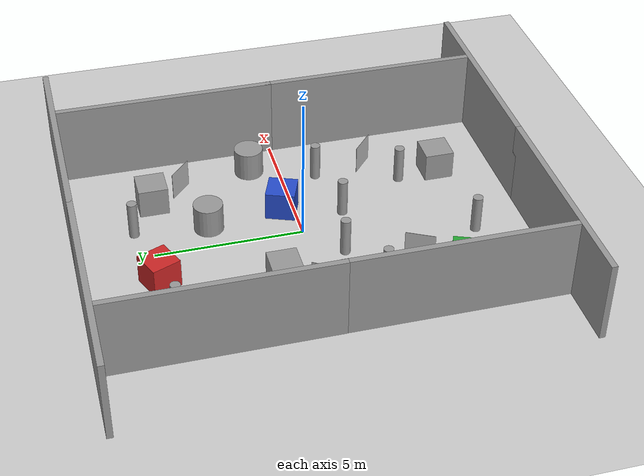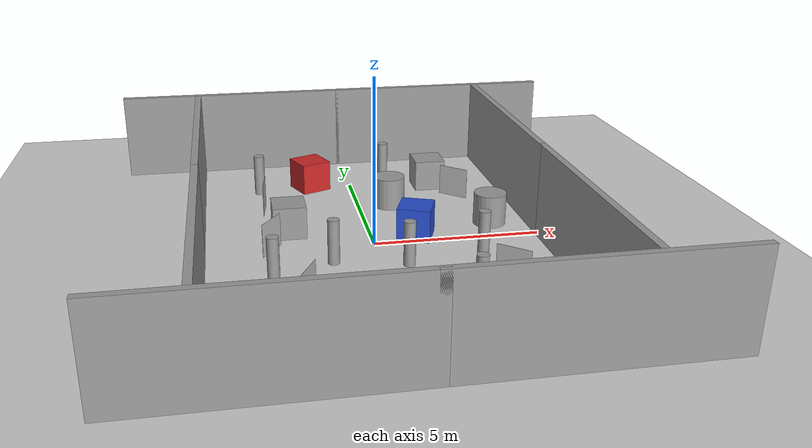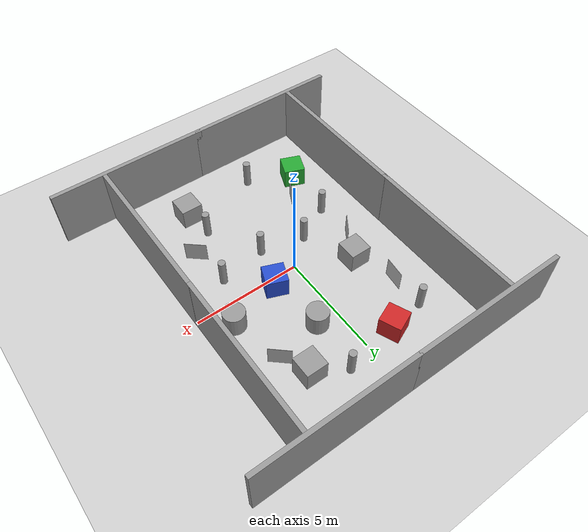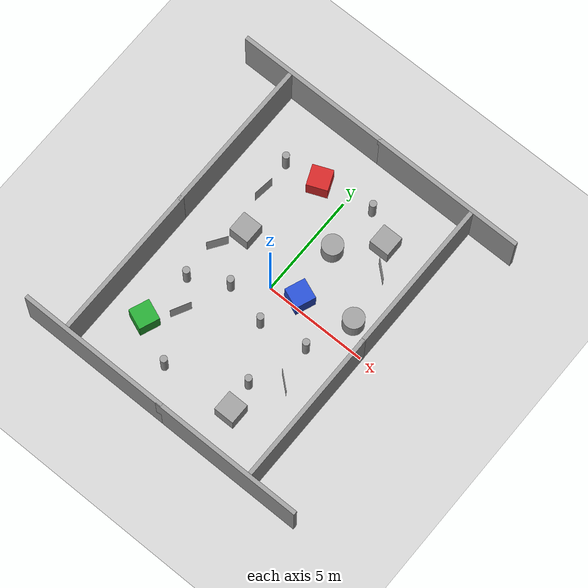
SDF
<sdf version="1.7">
 <world name="default">
  <light name="sun" type="directional">
   <pose>0 0 10 0 -0 0</pose>
   <diffuse>0.8 0.8 0.8 1</diffuse>
   <specular>0.2 0.2 0.2 1</specular>
   <attenuation>
    <range>1000</range>
    <constant>0.9</constant>
    <linear>0.01</linear>
    <quadratic>0.001</quadratic>
   </attenuation>
   <direction>-0.5 0.1 -0.9</direction>
   <spot><inner_angle>0</inner_angle><outer_angle>0</outer_angle><falloff>0</falloff></spot>
  </light>
  <model name="ground_plane">
   <static>1</static>
   <link name="link">
    <collision name="collision">
     <geometry><plane><normal>0 0 1</normal><size>100 100</size></plane></geometry>
     <surface>
      <contact><collide_bitmask>65535</collide_bitmask></contact>
      <friction><ode><mu>100</mu><mu2>50</mu2></ode></friction>
     </surface>
    </collision>
    <visual name="visual">
     <cast_shadows>0</cast_shadows>
     <geometry><plane><normal>0 0 1</normal><size>100 100</size></plane></geometry>
     <material>
      <script><uri>file://media/materials/scripts/gazebo.material</uri><name>Gazebo/Grey</name></script>
     </material>
    </visual>
   </link>
  </model>
  <gravity>0 0 -9.8</gravity>
  <magnetic_field>6e-06 2.3e-05 -4.2e-05</magnetic_field>
  <atmosphere type="adiabatic"/>
  <physics type="ode">
   <max_step_size>0.001</max_step_size>
   <real_time_factor>1</real_time_factor>
   <real_time_update_rate>1000</real_time_update_rate>
  </physics>
  <scene><ambient>0.4 0.4 0.4 1</ambient><background>0.7 0.7 0.7 1</background><shadows>1</shadows></scene>
  <spherical_coordinates>
   <surface_model>EARTH_WGS84</surface_model>
   <latitude_deg>0</latitude_deg>
   <longitude_deg>0</longitude_deg>
   <elevation>0</elevation>
   <heading_deg>0</heading_deg>
  </spherical_coordinates>
  <model name="grey_wall">
   <static>1</static>
   <link name="link">
    <pose>0 0 1.4 0 -0 0</pose>
    <collision name="collision"><geometry><box><size>7.5 0.2 2.8</size></box></geometry></collision>
    <visual name="visual">
     <cast_shadows>0</cast_shadows>
     <geometry><box><size>7.5 0.2 2.8</size></box></geometry>
     <material>
      <script>
       <uri>model://grey_wall/materials/scripts</uri>
       <uri>model://grey_wall/materials/textures</uri>
       <name>vrc/grey_wall</name>
      </script>
     </material>
    </visual>
   </link>
   <pose>3.76571 -7.5 0 0 -0 0</pose>
  </model>
  <model name="grey_wall_0_clone">
   <static>1</static>
   <link name="link">
    <pose>0 0 1.4 0 -0 0</pose>
    <collision name="collision"><geometry><box><size>7.5 0.2 2.8</size></box></geometry></collision>
    <visual name="visual">
     <cast_shadows>0</cast_shadows>
     <geometry><box><size>7.5 0.2 2.8</size></box></geometry>
     <material>
      <script>
       <uri>model://grey_wall/materials/scripts</uri>
       <uri>model://grey_wall/materials/textures</uri>
       <name>vrc/grey_wall</name>
      </script>
     </material>
    </visual>
   </link>
   <pose>-5 -3.65 0 0 0 -1.57174</pose>
  </model>
  <model name="grey_wall_0_clone_clone">
   <static>1</static>
   <link name="link">
    <pose>0 0 1.4 0 -0 0</pose>
    <collision name="collision"><geometry><box><size>7.5 0.2 2.8</size></box></geometry></collision>
    <visual name="visual">
     <cast_shadows>0</cast_shadows>
     <geometry><box><size>7.5 0.2 2.8</size></box></geometry>
     <material>
      <script>
       <uri>model://grey_wall/materials/scripts</uri>
       <uri>model://grey_wall/materials/textures</uri>
       <name>vrc/grey_wall</name>
      </script>
     </material>
    </visual>
   </link>
   <pose>-5 3.65 0 0 0 -1.57174</pose>
  </model>
  <model name="grey_wall_0_clone_0">
   <static>1</static>
   <link name="link">
    <pose>0 0 1.4 0 -0 0</pose>
    <collision name="collision"><geometry><box><size>7.5 0.2 2.8</size></box></geometry></collision>
    <visual name="visual">
     <cast_shadows>0</cast_shadows>
     <geometry><box><size>7.5 0.2 2.8</size></box></geometry>
     <material>
      <script>
       <uri>model://grey_wall/materials/scripts</uri>
       <uri>model://grey_wall/materials/textures</uri>
       <name>vrc/grey_wall</name>
      </script>
     </material>
    </visual>
   </link>
   <pose>-3.7977 7.5 0 0 -0 0</pose>
  </model>
  <model name="grey_wall_0_clone_1">
   <static>1</static>
   <link name="link">
    <pose>0 0 1.4 0 -0 0</pose>
    <collision name="collision"><geometry><box><size>7.5 0.2 2.8</size></box></geometry></collision>
    <visual name="visual">
     <cast_shadows>0</cast_shadows>
     <geometry><box><size>7.5 0.2 2.8</size></box></geometry>
     <material>
      <script>
       <uri>model://grey_wall/materials/scripts</uri>
       <uri>model://grey_wall/materials/textures</uri>
       <name>vrc/grey_wall</name>
      </script>
     </material>
    </visual>
   </link>
   <pose>3.61881 7.5 0 0 -0 0</pose>
  </model>
  <model name="grey_wall_0_clone_clone_clone">
   <static>1</static>
   <link name="link">
    <pose>0 0 1.4 0 -0 0</pose>
    <collision name="collision"><geometry><box><size>7.5 0.2 2.8</size></box></geometry></collision>
    <visual name="visual">
     <cast_shadows>0</cast_shadows>
     <geometry><box><size>7.5 0.2 2.8</size></box></geometry>
     <material>
      <script>
       <uri>model://grey_wall/materials/scripts</uri>
       <uri>model://grey_wall/materials/textures</uri>
       <name>vrc/grey_wall</name>
      </script>
     </material>
    </visual>
   </link>
   <pose>5 3.65 0 0 0 -1.57174</pose>
  </model>
  <model name="grey_wall_0_clone_clone_clone_0">
   <static>1</static>
   <link name="link">
    <pose>0 0 1.4 0 -0 0</pose>
    <collision name="collision"><geometry><box><size>7.5 0.2 2.8</size></box></geometry></collision>
    <visual name="visual">
     <cast_shadows>0</cast_shadows>
     <geometry><box><size>7.5 0.2 2.8</size></box></geometry>
     <material>
      <script>
       <uri>model://grey_wall/materials/scripts</uri>
       <uri>model://grey_wall/materials/textures</uri>
       <name>vrc/grey_wall</name>
      </script>
     </material>
    </visual>
   </link>
   <pose>5 -3.65 0 0 0 -1.57174</pose>
  </model>
  <model name="Red_Box">
   <link name="link">
    <inertial>
     <mass>1</mass>
     <inertia>
      <ixx>0.166667</ixx>
      <ixy>0</ixy>
      <ixz>0</ixz>
      <iyy>0.166667</iyy>
      <iyz>0</iyz>
      <izz>0.166667</izz>
     </inertia>
    </inertial>
    <pose>0 0 0 0 -0 0.393269</pose>
    <visual name="visual">
     <geometry><box><size>1 1 1</size></box></geometry>
     <material>
      <script><name>Gazebo/Red</name><uri>file://media/materials/scripts/gazebo.material</uri></script>
      <shader type="pixel"><normal_map>__default__</normal_map></shader>
      <ambient>1 0 0 1</ambient>
      <diffuse>1 0 0 1</diffuse>
      <specular>0.1 0.1 0.1 1</specular>
      <emissive>0 0 0 1</emissive>
     </material>
    </visual>
    <collision name="collision">
     <geometry><box><size>1 1 1</size></box></geometry>
     <surface>
      <friction>
       <ode><mu>1</mu><mu2>1</mu2><fdir1>0 0 0</fdir1><slip1>0</slip1><slip2>0</slip2></ode>
       <torsional>
        <coefficient>1</coefficient>
        <patch_radius>0</patch_radius>
        <surface_radius>0</surface_radius>
        <use_patch_radius>1</use_patch_radius>
        <ode><slip>0</slip></ode>
       </torsional>
      </friction>
      <bounce><restitution_coefficient>0</restitution_coefficient><threshold>1e+06</threshold></bounce>
      <contact>
       <collide_without_contact>0</collide_without_contact>
       <collide_without_contact_bitmask>1</collide_without_contact_bitmask>
       <collide_bitmask>1</collide_bitmask>
       <ode>
        <soft_cfm>0</soft_cfm>
        <soft_erp>0.2</soft_erp>
        <kp>1e+13</kp>
        <kd>1</kd>
        <max_vel>0.01</max_vel>
        <min_depth>0</min_depth>
       </ode>
       <bullet>
        <split_impulse>1</split_impulse>
        <split_impulse_penetration_threshold>-0.01</split_impulse_penetration_threshold>
        <soft_cfm>0</soft_cfm>
        <soft_erp>0.2</soft_erp>
        <kp>1e+13</kp>
        <kd>1</kd>
       </bullet>
      </contact>
     </surface>
    </collision>
   </link>
   <static>0</static>
   <pose>-1.35859 5.03765 0.499995 9e-06 4e-06 -3.2e-05</pose>
  </model>
  <model name="Apriltag36_11_00000">
   <link name="main">
    <visual name="main_Visual">
     <geometry><box><size>1 1 0.01</size></box></geometry>
     <material>
      <script>
       <uri>model://Apriltag36_11_00000/materials/scripts</uri>
       <uri>model://Apriltag36_11_00000/materials/textures</uri>
       <name>Apriltag36_11_00000</name>
      </script>
      <shader type="pixel"/>
     </material>
    </visual>
   </link>
   <static>1</static>
   <pose>-2.27346 -3.31731 0.504988 0.481937 1.56881 -0.000254</pose>
  </model>
  <model name="Apriltag36_11_00001">
   <link name="main">
    <visual name="main_Visual">
     <geometry><box><size>1 1 0.01</size></box></geometry>
     <material>
      <script>
       <uri>model://Apriltag36_11_00001/materials/scripts</uri>
       <uri>model://Apriltag36_11_00001/materials/textures</uri>
       <name>Apriltag36_11_00001</name>
      </script>
      <shader type="pixel"/>
     </material>
    </visual>
   </link>
   <static>1</static>
   <pose>3.23114 -2.99645 0.480634 -0.0002 -1.56711 0.855025</pose>
  </model>
  <model name="Apriltag36_11_00003">
   <link name="main">
    <visual name="main_Visual">
     <geometry><box><size>1 1 0.01</size></box></geometry>
     <material>
      <script>
       <uri>model://Apriltag36_11_00003/materials/scripts</uri>
       <uri>model://Apriltag36_11_00003/materials/textures</uri>
       <name>Apriltag36_11_00003</name>
      </script>
      <shader type="pixel"/>
     </material>
    </visual>
   </link>
   <static>1</static>
   <pose>-3.024 3.17695 0.494585 -3.01408 1.56828 3.14116</pose>
  </model>
  <model name="Apriltag36_11_00004">
   <link name="main">
    <visual name="main_Visual">
     <geometry><box><size>1 1 0.01</size></box></geometry>
     <material>
      <script>
       <uri>model://Apriltag36_11_00004/materials/scripts</uri>
       <uri>model://Apriltag36_11_00004/materials/textures</uri>
       <name>Apriltag36_11_00004</name>
      </script>
      <shader type="pixel"/>
     </material>
    </visual>
   </link>
   <static>1</static>
   <pose>3.29403 3.53326 0.466723 -0.000171 -1.56884 0.837922</pose>
  </model>
  <model name="Apriltag36_11_00005">
   <link name="main">
    <visual name="main_Visual">
     <geometry><box><size>1 1 0.01</size></box></geometry>
     <material>
      <script>
       <uri>model://Apriltag36_11_00005/materials/scripts</uri>
       <uri>model://Apriltag36_11_00005/materials/textures</uri>
       <name>Apriltag36_11_00005</name>
      </script>
      <shader type="pixel"/>
     </material>
    </visual>
   </link>
   <static>1</static>
   <pose>-2.99735 0.005875 0.497451 1.56444 0.003842 0.974229</pose>
  </model>
  <model name="Green_Box">
   <link name="link">
    <inertial>
     <mass>1</mass>
     <inertia>
      <ixx>0.166667</ixx>
      <ixy>0</ixy>
      <ixz>0</ixz>
      <iyy>0.166667</iyy>
      <iyz>0</iyz>
      <izz>0.166667</izz>
     </inertia>
    </inertial>
    <visual name="visual">
     <geometry><box><size>1 1 1</size></box></geometry>
     <material>
      <script><name>Gazebo/Green</name><uri>file://media/materials/scripts/gazebo.material</uri></script>
      <shader type="pixel"><normal_map>__default__</normal_map></shader>
      <ambient>0 1 0 1</ambient>
      <diffuse>0 1 0 1</diffuse>
      <specular>0.1 0.1 0.1 1</specular>
      <emissive>0 0 0 1</emissive>
     </material>
    </visual>
    <collision name="collision">
     <geometry><box><size>1 1 1</size></box></geometry>
     <surface>
      <friction>
       <ode><mu>1</mu><mu2>1</mu2><fdir1>0 0 0</fdir1><slip1>0</slip1><slip2>0</slip2></ode>
       <torsional>
        <coefficient>1</coefficient>
        <patch_radius>0</patch_radius>
        <surface_radius>0</surface_radius>
        <use_patch_radius>1</use_patch_radius>
        <ode><slip>0</slip></ode>
       </torsional>
      </friction>
      <bounce><restitution_coefficient>0</restitution_coefficient><threshold>1e+06</threshold></bounce>
      <contact>
       <collide_without_contact>0</collide_without_contact>
       <collide_without_contact_bitmask>1</collide_without_contact_bitmask>
       <collide_bitmask>1</collide_bitmask>
       <ode>
        <soft_cfm>0</soft_cfm>
        <soft_erp>0.2</soft_erp>
        <kp>1e+13</kp>
        <kd>1</kd>
        <max_vel>0.01</max_vel>
        <min_depth>0</min_depth>
       </ode>
       <bullet>
        <split_impulse>1</split_impulse>
        <split_impulse_penetration_threshold>-0.01</split_impulse_penetration_threshold>
        <soft_cfm>0</soft_cfm>
        <soft_erp>0.2</soft_erp>
        <kp>1e+13</kp>
        <kd>1</kd>
       </bullet>
      </contact>
     </surface>
    </collision>
   </link>
   <static>0</static>
   <pose>-3.25244 -4.57911 0.499995 -1e-05 -0 -0.379876</pose>
  </model>
  <model name="Blue_Box">
   <link name="link">
    <inertial>
     <mass>1</mass>
     <inertia>
      <ixx>0.166667</ixx>
      <ixy>0</ixy>
      <ixz>0</ixz>
      <iyy>0.166667</iyy>
      <iyz>0</iyz>
      <izz>0.166667</izz>
     </inertia>
    </inertial>
    <visual name="visual">
     <geometry><box><size>1 1 1</size></box></geometry>
     <material>
      <script><name>Gazebo/Blue</name><uri>file://media/materials/scripts/gazebo.material</uri></script>
      <shader type="pixel"><normal_map>__default__</normal_map></shader>
      <ambient>0 0 1 1</ambient>
      <diffuse>0 0 1 1</diffuse>
      <specular>0.1 0.1 0.1 1</specular>
      <emissive>0 0 0 1</emissive>
     </material>
    </visual>
    <collision name="collision">
     <geometry><box><size>1 1 1</size></box></geometry>
     <surface>
      <friction>
       <ode><mu>1</mu><mu2>1</mu2><fdir1>0 0 0</fdir1><slip1>0</slip1><slip2>0</slip2></ode>
       <torsional>
        <coefficient>1</coefficient>
        <patch_radius>0</patch_radius>
        <surface_radius>0</surface_radius>
        <use_patch_radius>1</use_patch_radius>
        <ode><slip>0</slip></ode>
       </torsional>
      </friction>
      <bounce><restitution_coefficient>0</restitution_coefficient><threshold>1e+06</threshold></bounce>
      <contact>
       <collide_without_contact>0</collide_without_contact>
       <collide_without_contact_bitmask>1</collide_without_contact_bitmask>
       <collide_bitmask>1</collide_bitmask>
       <ode>
        <soft_cfm>0</soft_cfm>
        <soft_erp>0.2</soft_erp>
        <kp>1e+13</kp>
        <kd>1</kd>
        <max_vel>0.01</max_vel>
        <min_depth>0</min_depth>
       </ode>
       <bullet>
        <split_impulse>1</split_impulse>
        <split_impulse_penetration_threshold>-0.01</split_impulse_penetration_threshold>
        <soft_cfm>0</soft_cfm>
        <soft_erp>0.2</soft_erp>
        <kp>1e+13</kp>
        <kd>1</kd>
       </bullet>
      </contact>
     </surface>
    </collision>
   </link>
   <static>0</static>
   <pose>1.32075 0.40303 0.499995 -1e-05 -0 -0.373955</pose>
  </model>
  <model name="unit_box">
   <pose>2.2507 -5.37134 0.499995 0 1e-05 5e-06</pose>
   <link name="link">
    <inertial>
     <mass>1</mass>
     <inertia>
      <ixx>0.166667</ixx>
      <ixy>0</ixy>
      <ixz>0</ixz>
      <iyy>0.166667</iyy>
      <iyz>0</iyz>
      <izz>0.166667</izz>
     </inertia>
    </inertial>
    <collision name="collision"><geometry><box><size>1 1 1</size></box></geometry></collision>
    <visual name="visual">
     <geometry><box><size>1 1 1</size></box></geometry>
     <material>
      <script><name>Gazebo/Grey</name><uri>file://media/materials/scripts/gazebo.material</uri></script>
     </material>
    </visual>
   </link>
  </model>
  <model name="unit_box_0">
   <pose>-2.40325 1.21654 0.499995 0 -1e-05 -5e-06</pose>
   <link name="link">
    <inertial>
     <mass>1</mass>
     <inertia>
      <ixx>0.166667</ixx>
      <ixy>0</ixy>
      <ixz>0</ixz>
      <iyy>0.166667</iyy>
      <iyz>0</iyz>
      <izz>0.166667</izz>
     </inertia>
    </inertial>
    <collision name="collision"><geometry><box><size>1 1 1</size></box></geometry></collision>
    <visual name="visual">
     <geometry><box><size>1 1 1</size></box></geometry>
     <material>
      <script><name>Gazebo/Grey</name><uri>file://media/materials/scripts/gazebo.material</uri></script>
     </material>
    </visual>
   </link>
  </model>
  <model name="unit_box_1">
   <pose>2.64583 4.63507 0.499995 -1e-05 -0 -0</pose>
   <link name="link">
    <inertial>
     <mass>1</mass>
     <inertia>
      <ixx>0.166667</ixx>
      <ixy>0</ixy>
      <ixz>0</ixz>
      <iyy>0.166667</iyy>
      <iyz>0</iyz>
      <izz>0.166667</izz>
     </inertia>
    </inertial>
    <collision name="collision"><geometry><box><size>1 1 1</size></box></geometry></collision>
    <visual name="visual">
     <geometry><box><size>1 1 1</size></box></geometry>
     <material>
      <script><name>Gazebo/Grey</name><uri>file://media/materials/scripts/gazebo.material</uri></script>
     </material>
    </visual>
   </link>
  </model>
  <model name="grey_wall_clone">
   <static>1</static>
   <link name="link">
    <pose>0 0 1.4 0 -0 0</pose>
    <collision name="collision"><geometry><box><size>7.5 0.2 2.8</size></box></geometry></collision>
    <visual name="visual">
     <cast_shadows>0</cast_shadows>
     <geometry><box><size>7.5 0.2 2.8</size></box></geometry>
     <material>
      <script>
       <uri>model://grey_wall/materials/scripts</uri>
       <uri>model://grey_wall/materials/textures</uri>
       <name>vrc/grey_wall</name>
      </script>
     </material>
    </visual>
   </link>
   <pose>-3.46162 -7.5 0 0 -0 0</pose>
  </model>
  <model name="unit_cylinder">
   <pose>-1.25741 -5.62705 0.659778 0 0 -2.3e-05</pose>
   <link name="link">
    <inertial>
     <mass>1</mass>
     <inertia><ixx>0.145833</ixx><ixy>0</ixy><ixz>0</ixz><iyy>0.145833</iyy><iyz>0</iyz><izz>0.125</izz></inertia>
    </inertial>
    <collision name="collision">
     <geometry><cylinder><radius>0.168502</radius><length>1.31956</length></cylinder></geometry>
    </collision>
    <visual name="visual">
     <geometry><cylinder><radius>0.168502</radius><length>1.31956</length></cylinder></geometry>
     <material>
      <script><name>Gazebo/Grey</name><uri>file://media/materials/scripts/gazebo.material</uri></script>
     </material>
    </visual>
   </link>
  </model>
  <model name="unit_cylinder_clone">
   <pose>0.71502 -1.55828 0.659772 -0 -0 -2.4e-05</pose>
   <link name="link">
    <inertial>
     <mass>1</mass>
     <inertia><ixx>0.145833</ixx><ixy>0</ixy><ixz>0</ixz><iyy>0.145833</iyy><iyz>0</iyz><izz>0.125</izz></inertia>
    </inertial>
    <collision name="collision">
     <geometry><cylinder><radius>0.168502</radius><length>1.31956</length></cylinder></geometry>
    </collision>
    <visual name="visual">
     <geometry><cylinder><radius>0.168502</radius><length>1.31956</length></cylinder></geometry>
     <material>
      <script><name>Gazebo/Grey</name><uri>file://media/materials/scripts/gazebo.material</uri></script>
     </material>
    </visual>
   </link>
  </model>
  <model name="unit_cylinder_clone_0">
   <pose>-3.06948 -1.9827 0.659778 0 0 -2.3e-05</pose>
   <link name="link">
    <inertial>
     <mass>1</mass>
     <inertia><ixx>0.145833</ixx><ixy>0</ixy><ixz>0</ixz><iyy>0.145833</iyy><iyz>0</iyz><izz>0.125</izz></inertia>
    </inertial>
    <collision name="collision">
     <geometry><cylinder><radius>0.168502</radius><length>1.31956</length></cylinder></geometry>
    </collision>
    <visual name="visual">
     <geometry><cylinder><radius>0.168502</radius><length>1.31956</length></cylinder></geometry>
     <material>
      <script><name>Gazebo/Grey</name><uri>file://media/materials/scripts/gazebo.material</uri></script>
     </material>
    </visual>
   </link>
  </model>
  <model name="unit_cylinder_0">
   <pose>3.7939 1.00686 0.499992 -3e-06 4e-06 0</pose>
   <link name="link">
    <inertial>
     <mass>1</mass>
     <inertia><ixx>0.145833</ixx><ixy>0</ixy><ixz>0</ixz><iyy>0.145833</iyy><iyz>0</iyz><izz>0.125</izz></inertia>
    </inertial>
    <collision name="collision">
     <geometry><cylinder><radius>0.5</radius><length>1</length></cylinder></geometry>
    </collision>
    <visual name="visual">
     <geometry><cylinder><radius>0.5</radius><length>1</length></cylinder></geometry>
     <material>
      <script><name>Gazebo/Grey</name><uri>file://media/materials/scripts/gazebo.material</uri></script>
     </material>
    </visual>
   </link>
  </model>
  <model name="unit_cylinder_1">
   <pose>1.00534 2.99759 0.499998 4e-06 -4e-06 0</pose>
   <link name="link">
    <inertial>
     <mass>1</mass>
     <inertia><ixx>0.145833</ixx><ixy>0</ixy><ixz>0</ixz><iyy>0.145833</iyy><iyz>0</iyz><izz>0.125</izz></inertia>
    </inertial>
    <collision name="collision">
     <geometry><cylinder><radius>0.5</radius><length>1</length></cylinder></geometry>
    </collision>
    <visual name="visual">
     <geometry><cylinder><radius>0.5</radius><length>1</length></cylinder></geometry>
     <material>
      <script><name>Gazebo/Grey</name><uri>file://media/materials/scripts/gazebo.material</uri></script>
     </material>
    </visual>
   </link>
  </model>
  <model name="unit_cylinder_clone_clone">
   <pose>-3.08538 4.79688 0.659778 0 0 -2.2e-05</pose>
   <link name="link">
    <inertial>
     <mass>1</mass>
     <inertia><ixx>0.145833</ixx><ixy>0</ixy><ixz>0</ixz><iyy>0.145833</iyy><iyz>0</iyz><izz>0.125</izz></inertia>
    </inertial>
    <collision name="collision">
     <geometry><cylinder><radius>0.168502</radius><length>1.31956</length></cylinder></geometry>
    </collision>
    <visual name="visual">
     <geometry><cylinder><radius>0.168502</radius><length>1.31956</length></cylinder></geometry>
     <material>
      <script><name>Gazebo/Grey</name><uri>file://media/materials/scripts/gazebo.material</uri></script>
     </material>
    </visual>
   </link>
  </model>
  <model name="unit_cylinder_clone_clone_0">
   <pose>1.23867 5.47825 0.659772 -0 -0 -2.2e-05</pose>
   <link name="link">
    <inertial>
     <mass>1</mass>
     <inertia><ixx>0.145833</ixx><ixy>0</ixy><ixz>0</ixz><iyy>0.145833</iyy><iyz>0</iyz><izz>0.125</izz></inertia>
    </inertial>
    <collision name="collision">
     <geometry><cylinder><radius>0.168502</radius><length>1.31956</length></cylinder></geometry>
    </collision>
    <visual name="visual">
     <geometry><cylinder><radius>0.168502</radius><length>1.31956</length></cylinder></geometry>
     <material>
      <script><name>Gazebo/Grey</name><uri>file://media/materials/scripts/gazebo.material</uri></script>
     </material>
    </visual>
   </link>
  </model>
  <model name="unit_cylinder_clone_clone_1">
   <pose>2.06334 -3.97981 0.659778 0 0 -2e-05</pose>
   <link name="link">
    <inertial>
     <mass>1</mass>
     <inertia><ixx>0.145833</ixx><ixy>0</ixy><ixz>0</ixz><iyy>0.145833</iyy><iyz>0</iyz><izz>0.125</izz></inertia>
    </inertial>
    <collision name="collision">
     <geometry><cylinder><radius>0.168502</radius><length>1.31956</length></cylinder></geometry>
    </collision>
    <visual name="visual">
     <geometry><cylinder><radius>0.168502</radius><length>1.31956</length></cylinder></geometry>
     <material>
      <script><name>Gazebo/Grey</name><uri>file://media/materials/scripts/gazebo.material</uri></script>
     </material>
    </visual>
   </link>
  </model>
  <model name="unit_cylinder_clone_clone_2">
   <pose>-1.34136 -1.07959 0.659772 0 -0 -2.4e-05</pose>
   <link name="link">
    <inertial>
     <mass>1</mass>
     <inertia><ixx>0.145833</ixx><ixy>0</ixy><ixz>0</ixz><iyy>0.145833</iyy><iyz>0</iyz><izz>0.125</izz></inertia>
    </inertial>
    <collision name="collision">
     <geometry><cylinder><radius>0.168502</radius><length>1.31956</length></cylinder></geometry>
    </collision>
    <visual name="visual">
     <geometry><cylinder><radius>0.168502</radius><length>1.31956</length></cylinder></geometry>
     <material>
      <script><name>Gazebo/Grey</name><uri>file://media/materials/scripts/gazebo.material</uri></script>
     </material>
    </visual>
   </link>
  </model>
  <model name="unit_cylinder_clone_clone_3">
   <pose>2.95063 -1.19492 0.659775 0 -0 -2e-05</pose>
   <link name="link">
    <inertial>
     <mass>1</mass>
     <inertia><ixx>0.145833</ixx><ixy>0</ixy><ixz>0</ixz><iyy>0.145833</iyy><iyz>0</iyz><izz>0.125</izz></inertia>
    </inertial>
    <collision name="collision">
     <geometry><cylinder><radius>0.168502</radius><length>1.31956</length></cylinder></geometry>
    </collision>
    <visual name="visual">
     <geometry><cylinder><radius>0.168502</radius><length>1.31956</length></cylinder></geometry>
     <material>
      <script><name>Gazebo/Grey</name><uri>file://media/materials/scripts/gazebo.material</uri></script>
     </material>
    </visual>
   </link>
  </model>
 </world>
</sdf>
